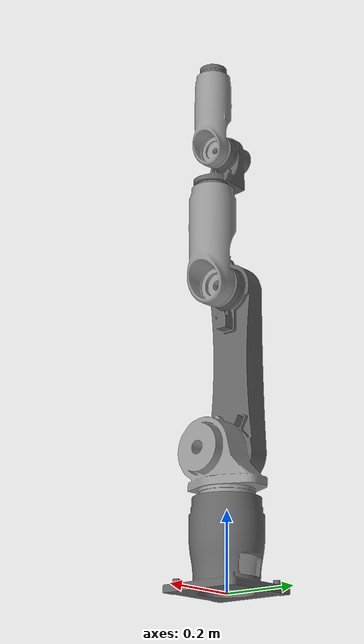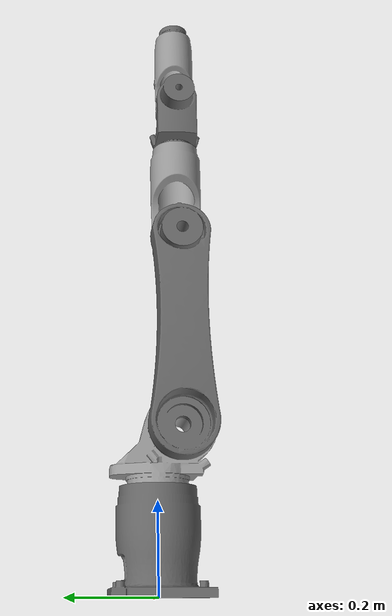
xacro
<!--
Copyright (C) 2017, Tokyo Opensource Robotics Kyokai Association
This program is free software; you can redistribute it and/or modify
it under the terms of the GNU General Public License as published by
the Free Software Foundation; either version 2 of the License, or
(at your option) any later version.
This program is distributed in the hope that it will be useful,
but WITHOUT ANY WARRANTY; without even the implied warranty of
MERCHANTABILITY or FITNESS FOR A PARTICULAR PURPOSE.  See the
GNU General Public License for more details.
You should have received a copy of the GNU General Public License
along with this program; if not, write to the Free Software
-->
<?xml version="1.0"?>
<!-- Revolute-Revolute Manipulator -->
<robot name="tra1" xmlns:xacro="http://www.ros.org/wiki/xacro">

  <!-- Constants for robot dimensions -->
  <xacro:property name="PI" value="3.1415926535897931"/>
  <xacro:property name="RIGHT_ANGLE" value="1.570796327"/>
  <xacro:property name="MODEL_RATIO" value="0.001"/>

  <!-- Import Rviz colors -->
  <xacro:include filename="$(find tra1_description)/urdf/materials.xacro" />

  <!-- Constants for TRA1 -->
  <xacro:property name="BASE_J1X" value="0"/>
  <xacro:property name="BASE_J1Y" value="0"/>
  <xacro:property name="BASE_J1Z" value="0.229"/>

  <xacro:property name="J1X_J2X" value="-0.05"/>
  <xacro:property name="J1Y_J2Y" value="-0.05"/>
  <xacro:property name="J1Z_J2Z" value="0.355"/>

  <xacro:property name="J2X_J3X" value="-0.0345"/>
  <xacro:property name="J2Y_J3Y" value="-0.05"/>
  <xacro:property name="J2Z_J3Z" value="0.795"/>

  <xacro:property name="J3X_J4X" value="0"/>
  <xacro:property name="J3Y_J4Y" value="-0.05"/>
  <xacro:property name="J3Z_J4Z" value="1.0545"/>

  <xacro:property name="J4X_J5X" value="-0.0215"/>
  <xacro:property name="J4Y_J5Y" value="-0.05"/>
  <xacro:property name="J4Z_J5Z" value="1.170"/>

  <xacro:property name="J5X_J6X" value="0"/>
  <xacro:property name="J5Y_J6Y" value="-0.05"/>
  <xacro:property name="J5Z_J6Z" value="1.3795"/>

  <!-- ==================================================================base_link -->
  <link name="base_link">
    <visual>
        <origin xyz="0 0 0" rpy="${RIGHT_ANGLE} 0 0"/>
        <axis xyz="0 0 0"/>
        <geometry>
            <mesh filename="package://tra1_description/meshes/B.STL" scale="${MODEL_RATIO} ${MODEL_RATIO} ${MODEL_RATIO}"/>
        </geometry>
        <material name="grey4"/>
    </visual>
  </link>
  <!-- +++++++++++++++++++++++++++++++++++++++++++++++++++++++++++++++++joint1 -->
  <joint name="joint1" type="revolute">
    <parent link="base_link"/>
    <child link="link_j1"/>
    <origin xyz="${BASE_J1X} ${BASE_J1Y} ${BASE_J1Z}" rpy="0 0 0"/>
    <axis xyz="0 0 1"/>
    <dynamics damping="0.7"/>
    <limit upper="2.18" lower="-2.18" effort="10" velocity="1" />
  </joint>
  <!-- ==================================================================link1 -->
  <link name="link_j1">
    <visual>
      <origin xyz="0 0 0" rpy="${RIGHT_ANGLE} 0 0"/>
      <geometry>
        <mesh filename="package://tra1_description/meshes/J1.STL" scale="${MODEL_RATIO} ${MODEL_RATIO} ${MODEL_RATIO}"/>
      </geometry>
      <material name="grey6"/>
    </visual>
  </link>
  <!-- +++++++++++++++++++++++++++++++++++++++++++++++++++++++++++++++++joint2 -->
  <joint name="joint2" type="revolute">
    <parent link="link_j1"/>
    <child link="link_j2"/>
    <origin xyz="${J1X_J2X-BASE_J1X} ${J1Y_J2Y-BASE_J1Y} ${J1Z_J2Z-BASE_J1Z}" rpy="0 0 0"/>
    <axis xyz="1 0 0"/>
    <dynamics damping="0.7"/>
    <limit upper="2.18" lower="-2.18" effort="10" velocity="1" />
  </joint>
  <!-- ==================================================================link2 -->
  <link name="link_j2">
    <visual>
      <origin xyz="0 0 0" rpy="${RIGHT_ANGLE} 0 0"/>
      <geometry>
        <mesh filename="package://tra1_description/meshes/J2.STL" scale="${MODEL_RATIO} ${MODEL_RATIO} ${MODEL_RATIO}"/>
      </geometry>
      <material name="grey4"/>
    </visual>
  </link>
  <!-- +++++++++++++++++++++++++++++++++++++++++++++++++++++++++++++++++joint3 -->
    <joint name="joint3" type="revolute">
      <parent link="link_j2"/>
      <child link="link_j3"/>
      <origin xyz="${J2X_J3X-J1X_J2X} ${J2Y_J3Y-J1Y_J2Y} ${J2Z_J3Z-J1Z_J2Z}" rpy="0 0 0"/>
      <axis xyz="1 0 0"/>
      <dynamics damping="0.7"/>
      <limit upper="2.18" lower="-2.18" effort="10" velocity="1" />
    </joint>
  <!-- ==================================================================link3 -->
  <link name="link_j3">
    <visual>
      <origin xyz="0 0 0" rpy="${RIGHT_ANGLE} 0 0"/>
      <geometry>
        <mesh filename="package://tra1_description/meshes/J3.STL" scale="${MODEL_RATIO} ${MODEL_RATIO} ${MODEL_RATIO}"/>
      </geometry>
      <material name="grey6"/>
    </visual>
  </link>
  <!-- +++++++++++++++++++++++++++++++++++++++++++++++++++++++++++++++++joint4 -->
  <joint name="joint4" type="revolute">
    <parent link="link_j3"/>
    <child link="link_j4"/>
    <origin xyz="${J3X_J4X-J2X_J3X} ${J3Y_J4Y-J2Y_J3Y} ${J3Z_J4Z-J2Z_J3Z}" rpy="0 0 0"/>
    <axis xyz="0 0 1"/>
    <dynamics damping="0.7"/>
    <limit upper="2.18" lower="-2.18" effort="10" velocity="1" />
  </joint>
  <!-- ==================================================================link4 -->
  <link name="link_j4">
    <visual>
      <origin xyz="0 0 0" rpy="${RIGHT_ANGLE} 0 0"/>
      <geometry>
        <mesh filename="package://tra1_description/meshes/J4.STL" scale="${MODEL_RATIO} ${MODEL_RATIO} ${MODEL_RATIO}"/>
      </geometry>
      <material name="grey4"/>
    </visual>
  </link>
  <!-- +++++++++++++++++++++++++++++++++++++++++++++++++++++++++++++++++joint5 -->
  <joint name="joint5" type="revolute">
    <parent link="link_j4"/>
    <child link="link_j5"/>
    <origin xyz="${J4X_J5X-J3X_J4X} ${J4Y_J5Y-J3Y_J4Y} ${J4Z_J5Z-J3Z_J4Z}" rpy="0 0 0"/>
    <axis xyz="1 0 0"/>
    <dynamics damping="0.7"/>
    <limit upper="2.18" lower="-2.18" effort="10" velocity="1" />
  </joint>
  <!-- ==================================================================link5 -->
  <link name="link_j5">
    <visual>
      <origin xyz="0 0 0" rpy="${RIGHT_ANGLE} 0 0"/>
      <geometry>
        <mesh filename="package://tra1_description/meshes/J5.STL" scale="${MODEL_RATIO} ${MODEL_RATIO} ${MODEL_RATIO}"/>
      </geometry>
      <material name="grey6"/>
    </visual>
  </link>
  <!-- +++++++++++++++++++++++++++++++++++++++++++++++++++++++++++++++++joint6 -->
  <joint name="joint6" type="revolute">
    <parent link="link_j5"/>
    <child link="link_j6"/>
    <origin xyz="${J5X_J6X-J4X_J5X} ${J5Y_J6Y-J4Y_J5Y} ${J5Z_J6Z-J4Z_J5Z}" rpy="0 0 0"/>
    <axis xyz="0 0 1"/>
    <dynamics damping="0.7"/>
    <limit upper="2.18" lower="-2.18" effort="10" velocity="1" />
  </joint>
  <!-- ==================================================================link6 -->
  <link name="link_j6">
    <visual>
      <origin xyz="0 0 0" rpy="${RIGHT_ANGLE} 0 0"/>
      <geometry>
        <mesh filename="package://tra1_description/meshes/J6.STL" scale="${MODEL_RATIO} ${MODEL_RATIO} ${MODEL_RATIO}"/>
      </geometry>
      <material name="grey4"/>
    </visual>
  </link>

</robot>

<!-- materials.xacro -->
<robot>

  <material name="black">
    <color rgba="0.0 0.0 0.0 1.0"/>
  </material>

  <material name="blue">
    <color rgba="0.0 0.0 0.8 1.0"/>
  </material>

  <material name="green">
    <color rgba="0.0 0.8 0.0 1.0"/>
  </material>

  <material name="grey1">
    <color rgba="0.1 0.1 0.1 1.0"/>
  </material>

  <material name="grey2">
    <color rgba="0.2 0.2 0.2 1.0"/>
  </material>

  <material name="grey3">
    <color rgba="0.3 0.3 0.3 1.0"/>
  </material>

  <material name="grey4">
    <color rgba="0.4 0.4 0.4 1.0"/>
  </material>

  <material name="grey5">
    <color rgba="0.5 0.5 0.5 1.0"/>
  </material>

  <material name="grey6">
    <color rgba="0.6 0.6 0.6 1.0"/>
  </material>

  <material name="grey7">
    <color rgba="0.7 0.7 0.7 1.0"/>
  </material>

  <material name="grey8">
    <color rgba="0.8 0.8 0.8 1.0"/>
  </material>

  <material name="grey9">
    <color rgba="0.9 0.9 0.9 1.0"/>
  </material>

  <material name="orange">
    <color rgba="${255/255} ${108/255} ${10/255} 1.0"/>
  </material>

  <material name="brown">
    <color rgba="${222/255} ${207/255} ${195/255} 1.0"/>
  </material>

  <material name="red">
    <color rgba="0.8 0.0 0.0 1.0"/>
  </material>

  <material name="white">
    <color rgba="1.0 1.0 1.0 1.0"/>
  </material>

</robot>
